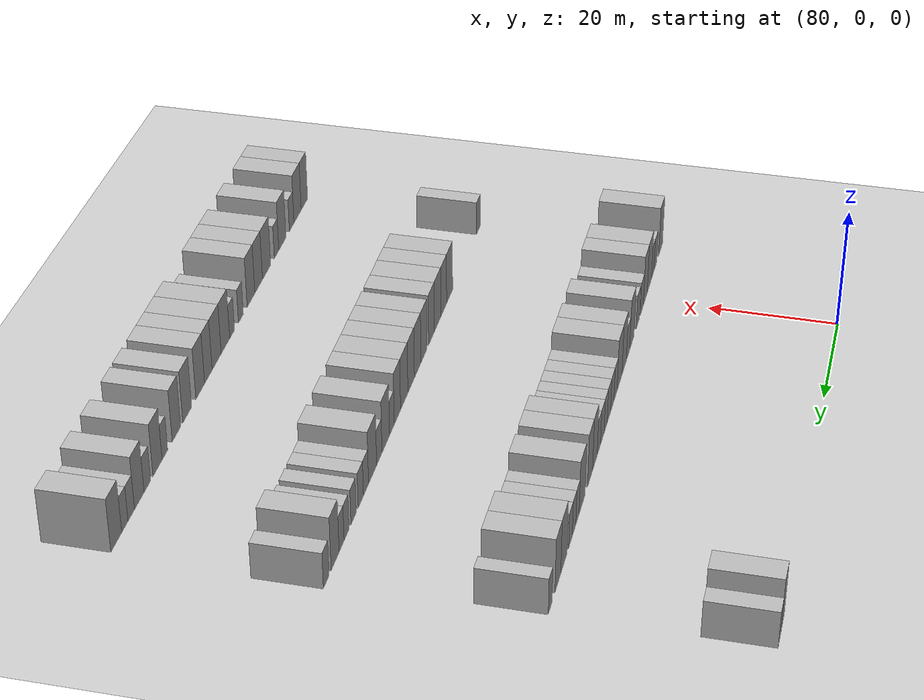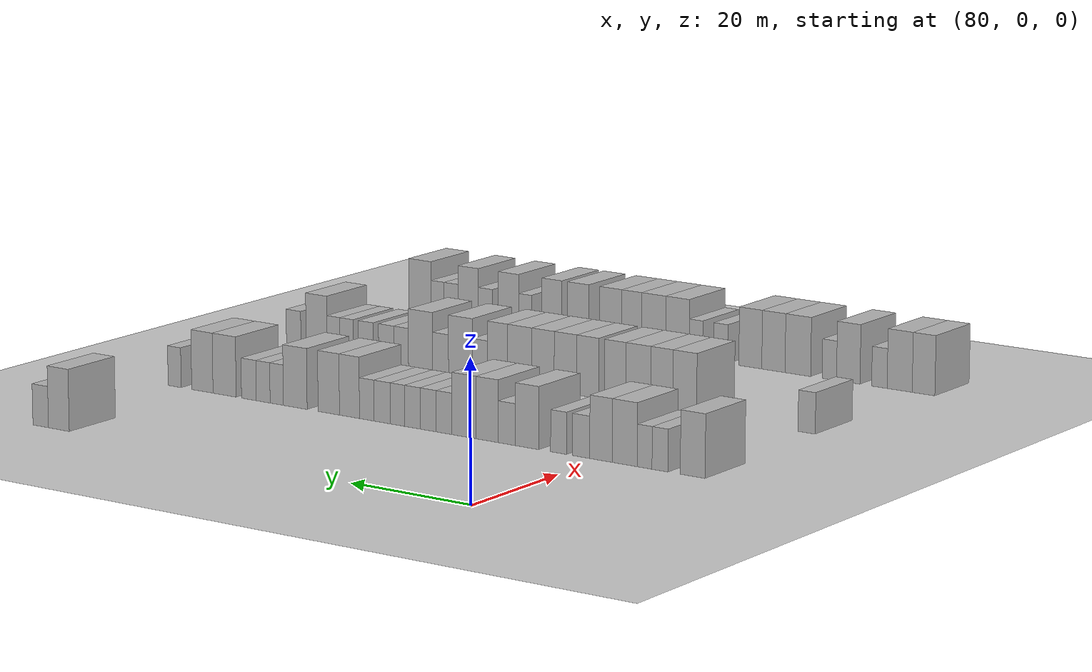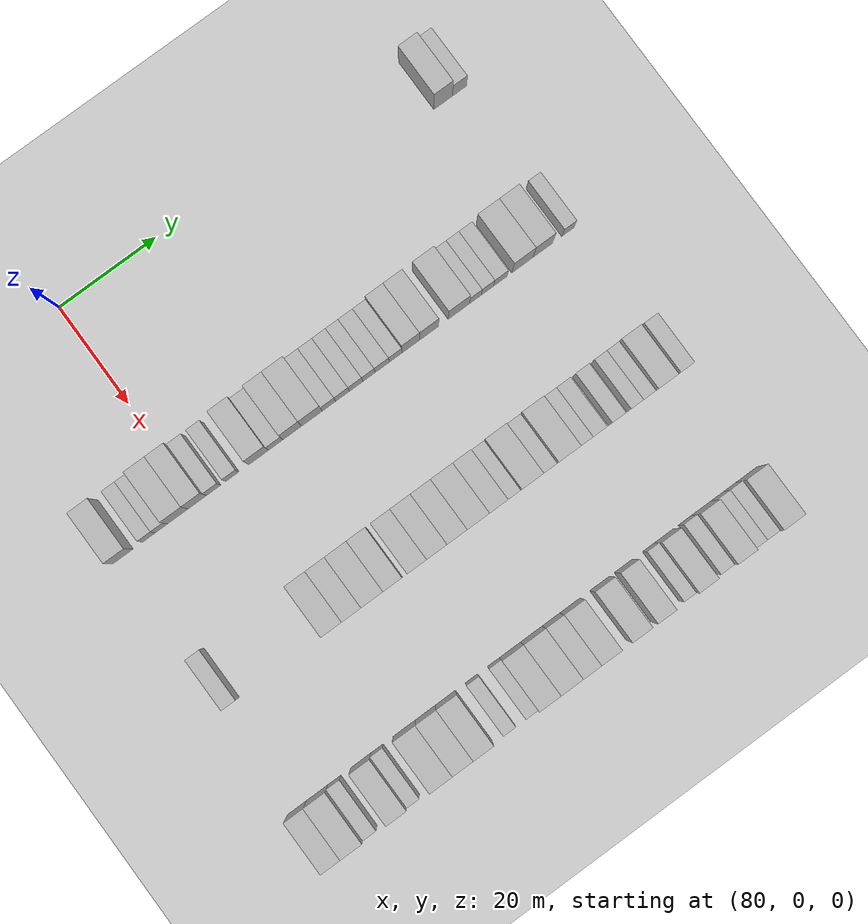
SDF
<sdf version="1.6">
 <world name="default">
  <include>
   <name>ground_plane_2</name>
   <uri>model://HANNAS_ground_plane</uri>
   <pose>100 0 0  0 0 0</pose>
  </include>
  <model name="building_602">
   <static>1</static>
   <pose>85.0000 72.1271 0 0.000000 0.000000 0.000000</pose>
   <link name="link">
    <pose>0 0 4.50 0 0 0</pose>
    <collision name="collision"><geometry><box><size>10.0000 3.8867 9.0000</size></box></geometry></collision>
    <visual name="visual">
     <cast_shadows>0</cast_shadows>
     <geometry><box><size>10.0000 3.8867 9.0000</size></box></geometry>
     <material>
      <script>
       <uri>model://HANNAS_wall/materials/scripts</uri>
       <uri>model://HANNAS_wall/materials/textures</uri>
       <name>vrc/HANNAS_wall</name>
      </script>
     </material>
    </visual>
   </link>
  </model>
  <model name="building_603">
   <static>1</static>
   <pose>85.0000 75.5362 0 0.000000 0.000000 0.000000</pose>
   <link name="link">
    <pose>0 0 3.00 0 0 0</pose>
    <collision name="collision"><geometry><box><size>10.0000 2.9314 6.0000</size></box></geometry></collision>
    <visual name="visual">
     <cast_shadows>0</cast_shadows>
     <geometry><box><size>10.0000 2.9314 6.0000</size></box></geometry>
     <material>
      <script>
       <uri>model://HANNAS_wall/materials/scripts</uri>
       <uri>model://HANNAS_wall/materials/textures</uri>
       <name>vrc/HANNAS_wall</name>
      </script>
     </material>
    </visual>
   </link>
  </model>
  <model name="building_815">
   <static>1</static>
   <pose>115.0000 -15.3195 0 0.000000 0.000000 0.000000</pose>
   <link name="link">
    <pose>0 0 4.50 0 0 0</pose>
    <collision name="collision"><geometry><box><size>10.0000 4.0246 9.0000</size></box></geometry></collision>
    <visual name="visual">
     <cast_shadows>0</cast_shadows>
     <geometry><box><size>10.0000 4.0246 9.0000</size></box></geometry>
     <material>
      <script>
       <uri>model://HANNAS_wall/materials/scripts</uri>
       <uri>model://HANNAS_wall/materials/textures</uri>
       <name>vrc/HANNAS_wall</name>
      </script>
     </material>
    </visual>
   </link>
  </model>
  <model name="building_816">
   <static>1</static>
   <pose>115.0000 -9.9924 0 0.000000 0.000000 0.000000</pose>
   <link name="link">
    <pose>0 0 3.00 0 0 0</pose>
    <collision name="collision"><geometry><box><size>10.0000 2.6296 6.0000</size></box></geometry></collision>
    <visual name="visual">
     <cast_shadows>0</cast_shadows>
     <geometry><box><size>10.0000 2.6296 6.0000</size></box></geometry>
     <material>
      <script>
       <uri>model://HANNAS_wall/materials/scripts</uri>
       <uri>model://HANNAS_wall/materials/textures</uri>
       <name>vrc/HANNAS_wall</name>
      </script>
     </material>
    </visual>
   </link>
  </model>
  <model name="building_817">
   <static>1</static>
   <pose>115.0000 -7.4677 0 0.000000 0.000000 0.000000</pose>
   <link name="link">
    <pose>0 0 3.00 0 0 0</pose>
    <collision name="collision"><geometry><box><size>10.0000 2.4199 6.0000</size></box></geometry></collision>
    <visual name="visual">
     <cast_shadows>0</cast_shadows>
     <geometry><box><size>10.0000 2.4199 6.0000</size></box></geometry>
     <material>
      <script>
       <uri>model://HANNAS_wall/materials/scripts</uri>
       <uri>model://HANNAS_wall/materials/textures</uri>
       <name>vrc/HANNAS_wall</name>
      </script>
     </material>
    </visual>
   </link>
  </model>
  <model name="building_818">
   <static>1</static>
   <pose>115.0000 -4.1831 0 0.000000 0.000000 0.000000</pose>
   <link name="link">
    <pose>0 0 4.50 0 0 0</pose>
    <collision name="collision"><geometry><box><size>10.0000 4.1493 9.0000</size></box></geometry></collision>
    <visual name="visual">
     <cast_shadows>0</cast_shadows>
     <geometry><box><size>10.0000 4.1493 9.0000</size></box></geometry>
     <material>
      <script>
       <uri>model://HANNAS_wall/materials/scripts</uri>
       <uri>model://HANNAS_wall/materials/textures</uri>
       <name>vrc/HANNAS_wall</name>
      </script>
     </material>
    </visual>
   </link>
  </model>
  <model name="building_819">
   <static>1</static>
   <pose>115.0000 -0.2357 0 0.000000 0.000000 0.000000</pose>
   <link name="link">
    <pose>0 0 4.50 0 0 0</pose>
    <collision name="collision"><geometry><box><size>10.0000 3.7454 9.0000</size></box></geometry></collision>
    <visual name="visual">
     <cast_shadows>0</cast_shadows>
     <geometry><box><size>10.0000 3.7454 9.0000</size></box></geometry>
     <material>
      <script>
       <uri>model://HANNAS_wall/materials/scripts</uri>
       <uri>model://HANNAS_wall/materials/textures</uri>
       <name>vrc/HANNAS_wall</name>
      </script>
     </material>
    </visual>
   </link>
  </model>
  <model name="building_820">
   <static>1</static>
   <pose>115.0000 3.0739 0 0.000000 0.000000 0.000000</pose>
   <link name="link">
    <pose>0 0 3.00 0 0 0</pose>
    <collision name="collision"><geometry><box><size>10.0000 2.8736 6.0000</size></box></geometry></collision>
    <visual name="visual">
     <cast_shadows>0</cast_shadows>
     <geometry><box><size>10.0000 2.8736 6.0000</size></box></geometry>
     <material>
      <script>
       <uri>model://HANNAS_wall/materials/scripts</uri>
       <uri>model://HANNAS_wall/materials/textures</uri>
       <name>vrc/HANNAS_wall</name>
      </script>
     </material>
    </visual>
   </link>
  </model>
  <model name="building_821">
   <static>1</static>
   <pose>115.0000 6.8669 0 0.000000 0.000000 0.000000</pose>
   <link name="link">
    <pose>0 0 3.00 0 0 0</pose>
    <collision name="collision"><geometry><box><size>10.0000 2.7125 6.0000</size></box></geometry></collision>
    <visual name="visual">
     <cast_shadows>0</cast_shadows>
     <geometry><box><size>10.0000 2.7125 6.0000</size></box></geometry>
     <material>
      <script>
       <uri>model://HANNAS_wall/materials/scripts</uri>
       <uri>model://HANNAS_wall/materials/textures</uri>
       <name>vrc/HANNAS_wall</name>
      </script>
     </material>
    </visual>
   </link>
  </model>
  <model name="building_822">
   <static>1</static>
   <pose>115.0000 12.2320 0 0.000000 0.000000 0.000000</pose>
   <link name="link">
    <pose>0 0 4.50 0 0 0</pose>
    <collision name="collision"><geometry><box><size>10.0000 4.0177 9.0000</size></box></geometry></collision>
    <visual name="visual">
     <cast_shadows>0</cast_shadows>
     <geometry><box><size>10.0000 4.0177 9.0000</size></box></geometry>
     <material>
      <script>
       <uri>model://HANNAS_wall/materials/scripts</uri>
       <uri>model://HANNAS_wall/materials/textures</uri>
       <name>vrc/HANNAS_wall</name>
      </script>
     </material>
    </visual>
   </link>
  </model>
  <model name="building_823">
   <static>1</static>
   <pose>115.0000 15.7139 0 0.000000 0.000000 0.000000</pose>
   <link name="link">
    <pose>0 0 3.00 0 0 0</pose>
    <collision name="collision"><geometry><box><size>10.0000 2.9461 6.0000</size></box></geometry></collision>
    <visual name="visual">
     <cast_shadows>0</cast_shadows>
     <geometry><box><size>10.0000 2.9461 6.0000</size></box></geometry>
     <material>
      <script>
       <uri>model://HANNAS_wall/materials/scripts</uri>
       <uri>model://HANNAS_wall/materials/textures</uri>
       <name>vrc/HANNAS_wall</name>
      </script>
     </material>
    </visual>
   </link>
  </model>
  <model name="building_824">
   <static>1</static>
   <pose>115.0000 19.0876 0 0.000000 0.000000 0.000000</pose>
   <link name="link">
    <pose>0 0 4.50 0 0 0</pose>
    <collision name="collision"><geometry><box><size>10.0000 3.8013 9.0000</size></box></geometry></collision>
    <visual name="visual">
     <cast_shadows>0</cast_shadows>
     <geometry><box><size>10.0000 3.8013 9.0000</size></box></geometry>
     <material>
      <script>
       <uri>model://HANNAS_wall/materials/scripts</uri>
       <uri>model://HANNAS_wall/materials/textures</uri>
       <name>vrc/HANNAS_wall</name>
      </script>
     </material>
    </visual>
   </link>
  </model>
  <model name="building_825">
   <static>1</static>
   <pose>115.0000 23.1120 0 0.000000 0.000000 0.000000</pose>
   <link name="link">
    <pose>0 0 4.50 0 0 0</pose>
    <collision name="collision"><geometry><box><size>10.0000 4.2475 9.0000</size></box></geometry></collision>
    <visual name="visual">
     <cast_shadows>0</cast_shadows>
     <geometry><box><size>10.0000 4.2475 9.0000</size></box></geometry>
     <material>
      <script>
       <uri>model://HANNAS_wall/materials/scripts</uri>
       <uri>model://HANNAS_wall/materials/textures</uri>
       <name>vrc/HANNAS_wall</name>
      </script>
     </material>
    </visual>
   </link>
  </model>
  <model name="building_826">
   <static>1</static>
   <pose>115.0000 26.5913 0 0.000000 0.000000 0.000000</pose>
   <link name="link">
    <pose>0 0 3.00 0 0 0</pose>
    <collision name="collision"><geometry><box><size>10.0000 2.7109 6.0000</size></box></geometry></collision>
    <visual name="visual">
     <cast_shadows>0</cast_shadows>
     <geometry><box><size>10.0000 2.7109 6.0000</size></box></geometry>
     <material>
      <script>
       <uri>model://HANNAS_wall/materials/scripts</uri>
       <uri>model://HANNAS_wall/materials/textures</uri>
       <name>vrc/HANNAS_wall</name>
      </script>
     </material>
    </visual>
   </link>
  </model>
  <model name="building_827">
   <static>1</static>
   <pose>115.0000 29.3653 0 0.000000 0.000000 0.000000</pose>
   <link name="link">
    <pose>0 0 3.00 0 0 0</pose>
    <collision name="collision"><geometry><box><size>10.0000 2.8371 6.0000</size></box></geometry></collision>
    <visual name="visual">
     <cast_shadows>0</cast_shadows>
     <geometry><box><size>10.0000 2.8371 6.0000</size></box></geometry>
     <material>
      <script>
       <uri>model://HANNAS_wall/materials/scripts</uri>
       <uri>model://HANNAS_wall/materials/textures</uri>
       <name>vrc/HANNAS_wall</name>
      </script>
     </material>
    </visual>
   </link>
  </model>
  <model name="building_828">
   <static>1</static>
   <pose>115.0000 32.1494 0 0.000000 0.000000 0.000000</pose>
   <link name="link">
    <pose>0 0 3.00 0 0 0</pose>
    <collision name="collision"><geometry><box><size>10.0000 2.7312 6.0000</size></box></geometry></collision>
    <visual name="visual">
     <cast_shadows>0</cast_shadows>
     <geometry><box><size>10.0000 2.7312 6.0000</size></box></geometry>
     <material>
      <script>
       <uri>model://HANNAS_wall/materials/scripts</uri>
       <uri>model://HANNAS_wall/materials/textures</uri>
       <name>vrc/HANNAS_wall</name>
      </script>
     </material>
    </visual>
   </link>
  </model>
  <model name="building_829">
   <static>1</static>
   <pose>115.0000 34.7835 0 0.000000 0.000000 0.000000</pose>
   <link name="link">
    <pose>0 0 3.00 0 0 0</pose>
    <collision name="collision"><geometry><box><size>10.0000 2.5369 6.0000</size></box></geometry></collision>
    <visual name="visual">
     <cast_shadows>0</cast_shadows>
     <geometry><box><size>10.0000 2.5369 6.0000</size></box></geometry>
     <material>
      <script>
       <uri>model://HANNAS_wall/materials/scripts</uri>
       <uri>model://HANNAS_wall/materials/textures</uri>
       <name>vrc/HANNAS_wall</name>
      </script>
     </material>
    </visual>
   </link>
  </model>
  <model name="building_830">
   <static>1</static>
   <pose>115.0000 37.5095 0 0.000000 0.000000 0.000000</pose>
   <link name="link">
    <pose>0 0 3.00 0 0 0</pose>
    <collision name="collision"><geometry><box><size>10.0000 2.9151 6.0000</size></box></geometry></collision>
    <visual name="visual">
     <cast_shadows>0</cast_shadows>
     <geometry><box><size>10.0000 2.9151 6.0000</size></box></geometry>
     <material>
      <script>
       <uri>model://HANNAS_wall/materials/scripts</uri>
       <uri>model://HANNAS_wall/materials/textures</uri>
       <name>vrc/HANNAS_wall</name>
      </script>
     </material>
    </visual>
   </link>
  </model>
  <model name="building_831">
   <static>1</static>
   <pose>115.0000 40.2841 0 0.000000 0.000000 0.000000</pose>
   <link name="link">
    <pose>0 0 3.00 0 0 0</pose>
    <collision name="collision"><geometry><box><size>10.0000 2.6342 6.0000</size></box></geometry></collision>
    <visual name="visual">
     <cast_shadows>0</cast_shadows>
     <geometry><box><size>10.0000 2.6342 6.0000</size></box></geometry>
     <material>
      <script>
       <uri>model://HANNAS_wall/materials/scripts</uri>
       <uri>model://HANNAS_wall/materials/textures</uri>
       <name>vrc/HANNAS_wall</name>
      </script>
     </material>
    </visual>
   </link>
  </model>
  <model name="building_832">
   <static>1</static>
   <pose>115.0000 43.4071 0 0.000000 0.000000 0.000000</pose>
   <link name="link">
    <pose>0 0 4.50 0 0 0</pose>
    <collision name="collision"><geometry><box><size>10.0000 3.6117 9.0000</size></box></geometry></collision>
    <visual name="visual">
     <cast_shadows>0</cast_shadows>
     <geometry><box><size>10.0000 3.6117 9.0000</size></box></geometry>
     <material>
      <script>
       <uri>model://HANNAS_wall/materials/scripts</uri>
       <uri>model://HANNAS_wall/materials/textures</uri>
       <name>vrc/HANNAS_wall</name>
      </script>
     </material>
    </visual>
   </link>
  </model>
  <model name="building_833">
   <static>1</static>
   <pose>115.0000 47.1525 0 0.000000 0.000000 0.000000</pose>
   <link name="link">
    <pose>0 0 4.50 0 0 0</pose>
    <collision name="collision"><geometry><box><size>10.0000 3.8791 9.0000</size></box></geometry></collision>
    <visual name="visual">
     <cast_shadows>0</cast_shadows>
     <geometry><box><size>10.0000 3.8791 9.0000</size></box></geometry>
     <material>
      <script>
       <uri>model://HANNAS_wall/materials/scripts</uri>
       <uri>model://HANNAS_wall/materials/textures</uri>
       <name>vrc/HANNAS_wall</name>
      </script>
     </material>
    </visual>
   </link>
  </model>
  <model name="building_834">
   <static>1</static>
   <pose>115.0000 53.2770 0 0.000000 0.000000 0.000000</pose>
   <link name="link">
    <pose>0 0 4.50 0 0 0</pose>
    <collision name="collision"><geometry><box><size>10.0000 4.3698 9.0000</size></box></geometry></collision>
    <visual name="visual">
     <cast_shadows>0</cast_shadows>
     <geometry><box><size>10.0000 4.3698 9.0000</size></box></geometry>
     <material>
      <script>
       <uri>model://HANNAS_wall/materials/scripts</uri>
       <uri>model://HANNAS_wall/materials/textures</uri>
       <name>vrc/HANNAS_wall</name>
      </script>
     </material>
    </visual>
   </link>
  </model>
  <model name="building_835">
   <static>1</static>
   <pose>115.0000 56.6901 0 0.000000 0.000000 0.000000</pose>
   <link name="link">
    <pose>0 0 3.00 0 0 0</pose>
    <collision name="collision"><geometry><box><size>10.0000 2.4565 6.0000</size></box></geometry></collision>
    <visual name="visual">
     <cast_shadows>0</cast_shadows>
     <geometry><box><size>10.0000 2.4565 6.0000</size></box></geometry>
     <material>
      <script>
       <uri>model://HANNAS_wall/materials/scripts</uri>
       <uri>model://HANNAS_wall/materials/textures</uri>
       <name>vrc/HANNAS_wall</name>
      </script>
     </material>
    </visual>
   </link>
  </model>
  <model name="building_836">
   <static>1</static>
   <pose>115.0000 59.2023 0 0.000000 0.000000 0.000000</pose>
   <link name="link">
    <pose>0 0 3.00 0 0 0</pose>
    <collision name="collision"><geometry><box><size>10.0000 2.5679 6.0000</size></box></geometry></collision>
    <visual name="visual">
     <cast_shadows>0</cast_shadows>
     <geometry><box><size>10.0000 2.5679 6.0000</size></box></geometry>
     <material>
      <script>
       <uri>model://HANNAS_wall/materials/scripts</uri>
       <uri>model://HANNAS_wall/materials/textures</uri>
       <name>vrc/HANNAS_wall</name>
      </script>
     </material>
    </visual>
   </link>
  </model>
  <model name="building_837">
   <static>1</static>
   <pose>115.0000 61.8632 0 0.000000 0.000000 0.000000</pose>
   <link name="link">
    <pose>0 0 3.00 0 0 0</pose>
    <collision name="collision"><geometry><box><size>10.0000 2.7539 6.0000</size></box></geometry></collision>
    <visual name="visual">
     <cast_shadows>0</cast_shadows>
     <geometry><box><size>10.0000 2.7539 6.0000</size></box></geometry>
     <material>
      <script>
       <uri>model://HANNAS_wall/materials/scripts</uri>
       <uri>model://HANNAS_wall/materials/textures</uri>
       <name>vrc/HANNAS_wall</name>
      </script>
     </material>
    </visual>
   </link>
  </model>
  <model name="building_838">
   <static>1</static>
   <pose>115.0000 66.4186 0 0.000000 0.000000 0.000000</pose>
   <link name="link">
    <pose>0 0 4.50 0 0 0</pose>
    <collision name="collision"><geometry><box><size>10.0000 4.3569 9.0000</size></box></geometry></collision>
    <visual name="visual">
     <cast_shadows>0</cast_shadows>
     <geometry><box><size>10.0000 4.3569 9.0000</size></box></geometry>
     <material>
      <script>
       <uri>model://HANNAS_wall/materials/scripts</uri>
       <uri>model://HANNAS_wall/materials/textures</uri>
       <name>vrc/HANNAS_wall</name>
      </script>
     </material>
    </visual>
   </link>
  </model>
  <model name="building_839">
   <static>1</static>
   <pose>115.0000 70.6143 0 0.000000 0.000000 0.000000</pose>
   <link name="link">
    <pose>0 0 4.50 0 0 0</pose>
    <collision name="collision"><geometry><box><size>10.0000 4.0347 9.0000</size></box></geometry></collision>
    <visual name="visual">
     <cast_shadows>0</cast_shadows>
     <geometry><box><size>10.0000 4.0347 9.0000</size></box></geometry>
     <material>
      <script>
       <uri>model://HANNAS_wall/materials/scripts</uri>
       <uri>model://HANNAS_wall/materials/textures</uri>
       <name>vrc/HANNAS_wall</name>
      </script>
     </material>
    </visual>
   </link>
  </model>
  <model name="building_840">
   <static>1</static>
   <pose>115.0000 75.8795 0 0.000000 0.000000 0.000000</pose>
   <link name="link">
    <pose>0 0 3.00 0 0 0</pose>
    <collision name="collision"><geometry><box><size>10.0000 2.4956 6.0000</size></box></geometry></collision>
    <visual name="visual">
     <cast_shadows>0</cast_shadows>
     <geometry><box><size>10.0000 2.4956 6.0000</size></box></geometry>
     <material>
      <script>
       <uri>model://HANNAS_wall/materials/scripts</uri>
       <uri>model://HANNAS_wall/materials/textures</uri>
       <name>vrc/HANNAS_wall</name>
      </script>
     </material>
    </visual>
   </link>
  </model>
  <model name="building_1040">
   <static>1</static>
   <pose>145.0000 -14.8241 0 0.000000 0.000000 0.000000</pose>
   <link name="link">
    <pose>0 0 3.00 0 0 0</pose>
    <collision name="collision"><geometry><box><size>10.0000 2.8543 6.0000</size></box></geometry></collision>
    <visual name="visual">
     <cast_shadows>0</cast_shadows>
     <geometry><box><size>10.0000 2.8543 6.0000</size></box></geometry>
     <material>
      <script>
       <uri>model://HANNAS_wall/materials/scripts</uri>
       <uri>model://HANNAS_wall/materials/textures</uri>
       <name>vrc/HANNAS_wall</name>
      </script>
     </material>
    </visual>
   </link>
  </model>
  <model name="building_1041">
   <static>1</static>
   <pose>145.0000 5.7694 0 0.000000 0.000000 0.000000</pose>
   <link name="link">
    <pose>0 0 4.50 0 0 0</pose>
    <collision name="collision"><geometry><box><size>10.0000 4.1109 9.0000</size></box></geometry></collision>
    <visual name="visual">
     <cast_shadows>0</cast_shadows>
     <geometry><box><size>10.0000 4.1109 9.0000</size></box></geometry>
     <material>
      <script>
       <uri>model://HANNAS_wall/materials/scripts</uri>
       <uri>model://HANNAS_wall/materials/textures</uri>
       <name>vrc/HANNAS_wall</name>
      </script>
     </material>
    </visual>
   </link>
  </model>
  <model name="building_1042">
   <static>1</static>
   <pose>145.0000 9.7400 0 0.000000 0.000000 0.000000</pose>
   <link name="link">
    <pose>0 0 4.50 0 0 0</pose>
    <collision name="collision"><geometry><box><size>10.0000 3.8304 9.0000</size></box></geometry></collision>
    <visual name="visual">
     <cast_shadows>0</cast_shadows>
     <geometry><box><size>10.0000 3.8304 9.0000</size></box></geometry>
     <material>
      <script>
       <uri>model://HANNAS_wall/materials/scripts</uri>
       <uri>model://HANNAS_wall/materials/textures</uri>
       <name>vrc/HANNAS_wall</name>
      </script>
     </material>
    </visual>
   </link>
  </model>
  <model name="building_1043">
   <static>1</static>
   <pose>145.0000 13.8228 0 0.000000 0.000000 0.000000</pose>
   <link name="link">
    <pose>0 0 4.50 0 0 0</pose>
    <collision name="collision"><geometry><box><size>10.0000 4.3353 9.0000</size></box></geometry></collision>
    <visual name="visual">
     <cast_shadows>0</cast_shadows>
     <geometry><box><size>10.0000 4.3353 9.0000</size></box></geometry>
     <material>
      <script>
       <uri>model://HANNAS_wall/materials/scripts</uri>
       <uri>model://HANNAS_wall/materials/textures</uri>
       <name>vrc/HANNAS_wall</name>
      </script>
     </material>
    </visual>
   </link>
  </model>
  <model name="building_1044">
   <static>1</static>
   <pose>145.0000 17.8666 0 0.000000 0.000000 0.000000</pose>
   <link name="link">
    <pose>0 0 4.50 0 0 0</pose>
    <collision name="collision"><geometry><box><size>10.0000 3.7522 9.0000</size></box></geometry></collision>
    <visual name="visual">
     <cast_shadows>0</cast_shadows>
     <geometry><box><size>10.0000 3.7522 9.0000</size></box></geometry>
     <material>
      <script>
       <uri>model://HANNAS_wall/materials/scripts</uri>
       <uri>model://HANNAS_wall/materials/textures</uri>
       <name>vrc/HANNAS_wall</name>
      </script>
     </material>
    </visual>
   </link>
  </model>
  <model name="building_1045">
   <static>1</static>
   <pose>145.0000 22.6790 0 0.000000 0.000000 0.000000</pose>
   <link name="link">
    <pose>0 0 4.50 0 0 0</pose>
    <collision name="collision"><geometry><box><size>10.0000 3.8727 9.0000</size></box></geometry></collision>
    <visual name="visual">
     <cast_shadows>0</cast_shadows>
     <geometry><box><size>10.0000 3.8727 9.0000</size></box></geometry>
     <material>
      <script>
       <uri>model://HANNAS_wall/materials/scripts</uri>
       <uri>model://HANNAS_wall/materials/textures</uri>
       <name>vrc/HANNAS_wall</name>
      </script>
     </material>
    </visual>
   </link>
  </model>
  <model name="building_1046">
   <static>1</static>
   <pose>145.0000 26.6401 0 0.000000 0.000000 0.000000</pose>
   <link name="link">
    <pose>0 0 4.50 0 0 0</pose>
    <collision name="collision"><geometry><box><size>10.0000 4.0496 9.0000</size></box></geometry></collision>
    <visual name="visual">
     <cast_shadows>0</cast_shadows>
     <geometry><box><size>10.0000 4.0496 9.0000</size></box></geometry>
     <material>
      <script>
       <uri>model://HANNAS_wall/materials/scripts</uri>
       <uri>model://HANNAS_wall/materials/textures</uri>
       <name>vrc/HANNAS_wall</name>
      </script>
     </material>
    </visual>
   </link>
  </model>
  <model name="building_1047">
   <static>1</static>
   <pose>145.0000 30.6682 0 0.000000 0.000000 0.000000</pose>
   <link name="link">
    <pose>0 0 4.50 0 0 0</pose>
    <collision name="collision"><geometry><box><size>10.0000 4.0067 9.0000</size></box></geometry></collision>
    <visual name="visual">
     <cast_shadows>0</cast_shadows>
     <geometry><box><size>10.0000 4.0067 9.0000</size></box></geometry>
     <material>
      <script>
       <uri>model://HANNAS_wall/materials/scripts</uri>
       <uri>model://HANNAS_wall/materials/textures</uri>
       <name>vrc/HANNAS_wall</name>
      </script>
     </material>
    </visual>
   </link>
  </model>
  <model name="building_1048">
   <static>1</static>
   <pose>145.0000 34.8838 0 0.000000 0.000000 0.000000</pose>
   <link name="link">
    <pose>0 0 4.50 0 0 0</pose>
    <collision name="collision"><geometry><box><size>10.0000 4.4245 9.0000</size></box></geometry></collision>
    <visual name="visual">
     <cast_shadows>0</cast_shadows>
     <geometry><box><size>10.0000 4.4245 9.0000</size></box></geometry>
     <material>
      <script>
       <uri>model://HANNAS_wall/materials/scripts</uri>
       <uri>model://HANNAS_wall/materials/textures</uri>
       <name>vrc/HANNAS_wall</name>
      </script>
     </material>
    </visual>
   </link>
  </model>
  <model name="building_1049">
   <static>1</static>
   <pose>145.0000 38.9397 0 0.000000 0.000000 0.000000</pose>
   <link name="link">
    <pose>0 0 4.50 0 0 0</pose>
    <collision name="collision"><geometry><box><size>10.0000 3.6873 9.0000</size></box></geometry></collision>
    <visual name="visual">
     <cast_shadows>0</cast_shadows>
     <geometry><box><size>10.0000 3.6873 9.0000</size></box></geometry>
     <material>
      <script>
       <uri>model://HANNAS_wall/materials/scripts</uri>
       <uri>model://HANNAS_wall/materials/textures</uri>
       <name>vrc/HANNAS_wall</name>
      </script>
     </material>
    </visual>
   </link>
  </model>
  <model name="building_1050">
   <static>1</static>
   <pose>145.0000 42.1488 0 0.000000 0.000000 0.000000</pose>
   <link name="link">
    <pose>0 0 3.00 0 0 0</pose>
    <collision name="collision"><geometry><box><size>10.0000 2.7309 6.0000</size></box></geometry></collision>
    <visual name="visual">
     <cast_shadows>0</cast_shadows>
     <geometry><box><size>10.0000 2.7309 6.0000</size></box></geometry>
     <material>
      <script>
       <uri>model://HANNAS_wall/materials/scripts</uri>
       <uri>model://HANNAS_wall/materials/textures</uri>
       <name>vrc/HANNAS_wall</name>
      </script>
     </material>
    </visual>
   </link>
  </model>
  <model name="building_1051">
   <static>1</static>
   <pose>145.0000 45.7005 0 0.000000 0.000000 0.000000</pose>
   <link name="link">
    <pose>0 0 4.50 0 0 0</pose>
    <collision name="collision"><geometry><box><size>10.0000 4.3724 9.0000</size></box></geometry></collision>
    <visual name="visual">
     <cast_shadows>0</cast_shadows>
     <geometry><box><size>10.0000 4.3724 9.0000</size></box></geometry>
     <material>
      <script>
       <uri>model://HANNAS_wall/materials/scripts</uri>
       <uri>model://HANNAS_wall/materials/textures</uri>
       <name>vrc/HANNAS_wall</name>
      </script>
     </material>
    </visual>
   </link>
  </model>
  <model name="building_1052">
   <static>1</static>
   <pose>145.0000 49.3763 0 0.000000 0.000000 0.000000</pose>
   <link name="link">
    <pose>0 0 3.00 0 0 0</pose>
    <collision name="collision"><geometry><box><size>10.0000 2.9791 6.0000</size></box></geometry></collision>
    <visual name="visual">
     <cast_shadows>0</cast_shadows>
     <geometry><box><size>10.0000 2.9791 6.0000</size></box></geometry>
     <material>
      <script>
       <uri>model://HANNAS_wall/materials/scripts</uri>
       <uri>model://HANNAS_wall/materials/textures</uri>
       <name>vrc/HANNAS_wall</name>
      </script>
     </material>
    </visual>
   </link>
  </model>
  <model name="building_1053">
   <static>1</static>
   <pose>145.0000 53.1043 0 0.000000 0.000000 0.000000</pose>
   <link name="link">
    <pose>0 0 4.50 0 0 0</pose>
    <collision name="collision"><geometry><box><size>10.0000 4.4769 9.0000</size></box></geometry></collision>
    <visual name="visual">
     <cast_shadows>0</cast_shadows>
     <geometry><box><size>10.0000 4.4769 9.0000</size></box></geometry>
     <material>
      <script>
       <uri>model://HANNAS_wall/materials/scripts</uri>
       <uri>model://HANNAS_wall/materials/textures</uri>
       <name>vrc/HANNAS_wall</name>
      </script>
     </material>
    </visual>
   </link>
  </model>
  <model name="building_1054">
   <static>1</static>
   <pose>145.0000 56.7218 0 0.000000 0.000000 0.000000</pose>
   <link name="link">
    <pose>0 0 3.00 0 0 0</pose>
    <collision name="collision"><geometry><box><size>10.0000 2.7581 6.0000</size></box></geometry></collision>
    <visual name="visual">
     <cast_shadows>0</cast_shadows>
     <geometry><box><size>10.0000 2.7581 6.0000</size></box></geometry>
     <material>
      <script>
       <uri>model://HANNAS_wall/materials/scripts</uri>
       <uri>model://HANNAS_wall/materials/textures</uri>
       <name>vrc/HANNAS_wall</name>
      </script>
     </material>
    </visual>
   </link>
  </model>
  <model name="building_1055">
   <static>1</static>
   <pose>145.0000 59.5335 0 0.000000 0.000000 0.000000</pose>
   <link name="link">
    <pose>0 0 3.00 0 0 0</pose>
    <collision name="collision"><geometry><box><size>10.0000 2.8652 6.0000</size></box></geometry></collision>
    <visual name="visual">
     <cast_shadows>0</cast_shadows>
     <geometry><box><size>10.0000 2.8652 6.0000</size></box></geometry>
     <material>
      <script>
       <uri>model://HANNAS_wall/materials/scripts</uri>
       <uri>model://HANNAS_wall/materials/textures</uri>
       <name>vrc/HANNAS_wall</name>
      </script>
     </material>
    </visual>
   </link>
  </model>
  <model name="building_1056">
   <static>1</static>
   <pose>145.0000 63.3692 0 0.000000 0.000000 0.000000</pose>
   <link name="link">
    <pose>0 0 3.00 0 0 0</pose>
    <collision name="collision"><geometry><box><size>10.0000 2.8061 6.0000</size></box></geometry></collision>
    <visual name="visual">
     <cast_shadows>0</cast_shadows>
     <geometry><box><size>10.0000 2.8061 6.0000</size></box></geometry>
     <material>
      <script>
       <uri>model://HANNAS_wall/materials/scripts</uri>
       <uri>model://HANNAS_wall/materials/textures</uri>
       <name>vrc/HANNAS_wall</name>
      </script>
     </material>
    </visual>
   </link>
  </model>
  <model name="building_1057">
   <static>1</static>
   <pose>145.0000 67.0434 0 0.000000 0.000000 0.000000</pose>
   <link name="link">
    <pose>0 0 3.00 0 0 0</pose>
    <collision name="collision"><geometry><box><size>10.0000 2.5423 6.0000</size></box></geometry></collision>
    <visual name="visual">
     <cast_shadows>0</cast_shadows>
     <geometry><box><size>10.0000 2.5423 6.0000</size></box></geometry>
     <material>
      <script>
       <uri>model://HANNAS_wall/materials/scripts</uri>
       <uri>model://HANNAS_wall/materials/textures</uri>
       <name>vrc/HANNAS_wall</name>
      </script>
     </material>
    </visual>
   </link>
  </model>
  <model name="building_1058">
   <static>1</static>
   <pose>145.0000 69.5686 0 0.000000 0.000000 0.000000</pose>
   <link name="link">
    <pose>0 0 3.00 0 0 0</pose>
    <collision name="collision"><geometry><box><size>10.0000 2.5082 6.0000</size></box></geometry></collision>
    <visual name="visual">
     <cast_shadows>0</cast_shadows>
     <geometry><box><size>10.0000 2.5082 6.0000</size></box></geometry>
     <material>
      <script>
       <uri>model://HANNAS_wall/materials/scripts</uri>
       <uri>model://HANNAS_wall/materials/textures</uri>
       <name>vrc/HANNAS_wall</name>
      </script>
     </material>
    </visual>
   </link>
  </model>
  <model name="building_1059">
   <static>1</static>
   <pose>145.0000 72.8426 0 0.000000 0.000000 0.000000</pose>
   <link name="link">
    <pose>0 0 4.50 0 0 0</pose>
    <collision name="collision"><geometry><box><size>10.0000 4.0398 9.0000</size></box></geometry></collision>
    <visual name="visual">
     <cast_shadows>0</cast_shadows>
     <geometry><box><size>10.0000 4.0398 9.0000</size></box></geometry>
     <material>
      <script>
       <uri>model://HANNAS_wall/materials/scripts</uri>
       <uri>model://HANNAS_wall/materials/textures</uri>
       <name>vrc/HANNAS_wall</name>
      </script>
     </material>
    </visual>
   </link>
  </model>
  <model name="building_1060">
   <static>1</static>
   <pose>145.0000 77.2683 0 0.000000 0.000000 0.000000</pose>
   <link name="link">
    <pose>0 0 3.00 0 0 0</pose>
    <collision name="collision"><geometry><box><size>10.0000 2.8116 6.0000</size></box></geometry></collision>
    <visual name="visual">
     <cast_shadows>0</cast_shadows>
     <geometry><box><size>10.0000 2.8116 6.0000</size></box></geometry>
     <material>
      <script>
       <uri>model://HANNAS_wall/materials/scripts</uri>
       <uri>model://HANNAS_wall/materials/textures</uri>
       <name>vrc/HANNAS_wall</name>
      </script>
     </material>
    </visual>
   </link>
  </model>
  <model name="building_1253">
   <static>1</static>
   <pose>175.0000 -16.2558 0 0.000000 0.000000 0.000000</pose>
   <link name="link">
    <pose>0 0 4.50 0 0 0</pose>
    <collision name="collision"><geometry><box><size>10.0000 3.8332 9.0000</size></box></geometry></collision>
    <visual name="visual">
     <cast_shadows>0</cast_shadows>
     <geometry><box><size>10.0000 3.8332 9.0000</size></box></geometry>
     <material>
      <script>
       <uri>model://HANNAS_wall/materials/scripts</uri>
       <uri>model://HANNAS_wall/materials/textures</uri>
       <name>vrc/HANNAS_wall</name>
      </script>
     </material>
    </visual>
   </link>
  </model>
  <model name="building_1254">
   <static>1</static>
   <pose>175.0000 -12.2053 0 0.000000 0.000000 0.000000</pose>
   <link name="link">
    <pose>0 0 4.50 0 0 0</pose>
    <collision name="collision"><geometry><box><size>10.0000 4.2679 9.0000</size></box></geometry></collision>
    <visual name="visual">
     <cast_shadows>0</cast_shadows>
     <geometry><box><size>10.0000 4.2679 9.0000</size></box></geometry>
     <material>
      <script>
       <uri>model://HANNAS_wall/materials/scripts</uri>
       <uri>model://HANNAS_wall/materials/textures</uri>
       <name>vrc/HANNAS_wall</name>
      </script>
     </material>
    </visual>
   </link>
  </model>
  <model name="building_1255">
   <static>1</static>
   <pose>175.0000 -8.7506 0 0.000000 0.000000 0.000000</pose>
   <link name="link">
    <pose>0 0 3.00 0 0 0</pose>
    <collision name="collision"><geometry><box><size>10.0000 2.6415 6.0000</size></box></geometry></collision>
    <visual name="visual">
     <cast_shadows>0</cast_shadows>
     <geometry><box><size>10.0000 2.6415 6.0000</size></box></geometry>
     <material>
      <script>
       <uri>model://HANNAS_wall/materials/scripts</uri>
       <uri>model://HANNAS_wall/materials/textures</uri>
       <name>vrc/HANNAS_wall</name>
      </script>
     </material>
    </visual>
   </link>
  </model>
  <model name="building_1256">
   <static>1</static>
   <pose>175.0000 -3.4044 0 0.000000 0.000000 0.000000</pose>
   <link name="link">
    <pose>0 0 4.50 0 0 0</pose>
    <collision name="collision"><geometry><box><size>10.0000 4.0509 9.0000</size></box></geometry></collision>
    <visual name="visual">
     <cast_shadows>0</cast_shadows>
     <geometry><box><size>10.0000 4.0509 9.0000</size></box></geometry>
     <material>
      <script>
       <uri>model://HANNAS_wall/materials/scripts</uri>
       <uri>model://HANNAS_wall/materials/textures</uri>
       <name>vrc/HANNAS_wall</name>
      </script>
     </material>
    </visual>
   </link>
  </model>
  <model name="building_1257">
   <static>1</static>
   <pose>175.0000 -0.1319 0 0.000000 0.000000 0.000000</pose>
   <link name="link">
    <pose>0 0 3.00 0 0 0</pose>
    <collision name="collision"><geometry><box><size>10.0000 2.4941 6.0000</size></box></geometry></collision>
    <visual name="visual">
     <cast_shadows>0</cast_shadows>
     <geometry><box><size>10.0000 2.4941 6.0000</size></box></geometry>
     <material>
      <script>
       <uri>model://HANNAS_wall/materials/scripts</uri>
       <uri>model://HANNAS_wall/materials/textures</uri>
       <name>vrc/HANNAS_wall</name>
      </script>
     </material>
    </visual>
   </link>
  </model>
  <model name="building_1258">
   <static>1</static>
   <pose>175.0000 5.3593 0 0.000000 0.000000 0.000000</pose>
   <link name="link">
    <pose>0 0 4.50 0 0 0</pose>
    <collision name="collision"><geometry><box><size>10.0000 4.4883 9.0000</size></box></geometry></collision>
    <visual name="visual">
     <cast_shadows>0</cast_shadows>
     <geometry><box><size>10.0000 4.4883 9.0000</size></box></geometry>
     <material>
      <script>
       <uri>model://HANNAS_wall/materials/scripts</uri>
       <uri>model://HANNAS_wall/materials/textures</uri>
       <name>vrc/HANNAS_wall</name>
      </script>
     </material>
    </visual>
   </link>
  </model>
  <model name="building_1259">
   <static>1</static>
   <pose>175.0000 9.6589 0 0.000000 0.000000 0.000000</pose>
   <link name="link">
    <pose>0 0 4.50 0 0 0</pose>
    <collision name="collision"><geometry><box><size>10.0000 4.1109 9.0000</size></box></geometry></collision>
    <visual name="visual">
     <cast_shadows>0</cast_shadows>
     <geometry><box><size>10.0000 4.1109 9.0000</size></box></geometry>
     <material>
      <script>
       <uri>model://HANNAS_wall/materials/scripts</uri>
       <uri>model://HANNAS_wall/materials/textures</uri>
       <name>vrc/HANNAS_wall</name>
      </script>
     </material>
    </visual>
   </link>
  </model>
  <model name="building_1260">
   <static>1</static>
   <pose>175.0000 13.7535 0 0.000000 0.000000 0.000000</pose>
   <link name="link">
    <pose>0 0 4.50 0 0 0</pose>
    <collision name="collision"><geometry><box><size>10.0000 4.0783 9.0000</size></box></geometry></collision>
    <visual name="visual">
     <cast_shadows>0</cast_shadows>
     <geometry><box><size>10.0000 4.0783 9.0000</size></box></geometry>
     <material>
      <script>
       <uri>model://HANNAS_wall/materials/scripts</uri>
       <uri>model://HANNAS_wall/materials/textures</uri>
       <name>vrc/HANNAS_wall</name>
      </script>
     </material>
    </visual>
   </link>
  </model>
  <model name="building_1261">
   <static>1</static>
   <pose>175.0000 19.0493 0 0.000000 0.000000 0.000000</pose>
   <link name="link">
    <pose>0 0 3.00 0 0 0</pose>
    <collision name="collision"><geometry><box><size>10.0000 2.5132 6.0000</size></box></geometry></collision>
    <visual name="visual">
     <cast_shadows>0</cast_shadows>
     <geometry><box><size>10.0000 2.5132 6.0000</size></box></geometry>
     <material>
      <script>
       <uri>model://HANNAS_wall/materials/scripts</uri>
       <uri>model://HANNAS_wall/materials/textures</uri>
       <name>vrc/HANNAS_wall</name>
      </script>
     </material>
    </visual>
   </link>
  </model>
  <model name="building_1262">
   <static>1</static>
   <pose>175.0000 23.5258 0 0.000000 0.000000 0.000000</pose>
   <link name="link">
    <pose>0 0 3.00 0 0 0</pose>
    <collision name="collision"><geometry><box><size>10.0000 2.4398 6.0000</size></box></geometry></collision>
    <visual name="visual">
     <cast_shadows>0</cast_shadows>
     <geometry><box><size>10.0000 2.4398 6.0000</size></box></geometry>
     <material>
      <script>
       <uri>model://HANNAS_wall/materials/scripts</uri>
       <uri>model://HANNAS_wall/materials/textures</uri>
       <name>vrc/HANNAS_wall</name>
      </script>
     </material>
    </visual>
   </link>
  </model>
  <model name="building_1263">
   <static>1</static>
   <pose>175.0000 26.8897 0 0.000000 0.000000 0.000000</pose>
   <link name="link">
    <pose>0 0 4.50 0 0 0</pose>
    <collision name="collision"><geometry><box><size>10.0000 4.2881 9.0000</size></box></geometry></collision>
    <visual name="visual">
     <cast_shadows>0</cast_shadows>
     <geometry><box><size>10.0000 4.2881 9.0000</size></box></geometry>
     <material>
      <script>
       <uri>model://HANNAS_wall/materials/scripts</uri>
       <uri>model://HANNAS_wall/materials/textures</uri>
       <name>vrc/HANNAS_wall</name>
      </script>
     </material>
    </visual>
   </link>
  </model>
  <model name="building_1264">
   <static>1</static>
   <pose>175.0000 31.2388 0 0.000000 0.000000 0.000000</pose>
   <link name="link">
    <pose>0 0 4.50 0 0 0</pose>
    <collision name="collision"><geometry><box><size>10.0000 4.4101 9.0000</size></box></geometry></collision>
    <visual name="visual">
     <cast_shadows>0</cast_shadows>
     <geometry><box><size>10.0000 4.4101 9.0000</size></box></geometry>
     <material>
      <script>
       <uri>model://HANNAS_wall/materials/scripts</uri>
       <uri>model://HANNAS_wall/materials/textures</uri>
       <name>vrc/HANNAS_wall</name>
      </script>
     </material>
    </visual>
   </link>
  </model>
  <model name="building_1265">
   <static>1</static>
   <pose>175.0000 35.2553 0 0.000000 0.000000 0.000000</pose>
   <link name="link">
    <pose>0 0 4.50 0 0 0</pose>
    <collision name="collision"><geometry><box><size>10.0000 3.6228 9.0000</size></box></geometry></collision>
    <visual name="visual">
     <cast_shadows>0</cast_shadows>
     <geometry><box><size>10.0000 3.6228 9.0000</size></box></geometry>
     <material>
      <script>
       <uri>model://HANNAS_wall/materials/scripts</uri>
       <uri>model://HANNAS_wall/materials/textures</uri>
       <name>vrc/HANNAS_wall</name>
      </script>
     </material>
    </visual>
   </link>
  </model>
  <model name="building_1266">
   <static>1</static>
   <pose>175.0000 39.1306 0 0.000000 0.000000 0.000000</pose>
   <link name="link">
    <pose>0 0 4.50 0 0 0</pose>
    <collision name="collision"><geometry><box><size>10.0000 4.1279 9.0000</size></box></geometry></collision>
    <visual name="visual">
     <cast_shadows>0</cast_shadows>
     <geometry><box><size>10.0000 4.1279 9.0000</size></box></geometry>
     <material>
      <script>
       <uri>model://HANNAS_wall/materials/scripts</uri>
       <uri>model://HANNAS_wall/materials/textures</uri>
       <name>vrc/HANNAS_wall</name>
      </script>
     </material>
    </visual>
   </link>
  </model>
  <model name="building_1267">
   <static>1</static>
   <pose>175.0000 45.2155 0 0.000000 0.000000 0.000000</pose>
   <link name="link">
    <pose>0 0 4.50 0 0 0</pose>
    <collision name="collision"><geometry><box><size>10.0000 4.0419 9.0000</size></box></geometry></collision>
    <visual name="visual">
     <cast_shadows>0</cast_shadows>
     <geometry><box><size>10.0000 4.0419 9.0000</size></box></geometry>
     <material>
      <script>
       <uri>model://HANNAS_wall/materials/scripts</uri>
       <uri>model://HANNAS_wall/materials/textures</uri>
       <name>vrc/HANNAS_wall</name>
      </script>
     </material>
    </visual>
   </link>
  </model>
  <model name="building_1268">
   <static>1</static>
   <pose>175.0000 50.1252 0 0.000000 0.000000 0.000000</pose>
   <link name="link">
    <pose>0 0 4.50 0 0 0</pose>
    <collision name="collision"><geometry><box><size>10.0000 3.7774 9.0000</size></box></geometry></collision>
    <visual name="visual">
     <cast_shadows>0</cast_shadows>
     <geometry><box><size>10.0000 3.7774 9.0000</size></box></geometry>
     <material>
      <script>
       <uri>model://HANNAS_wall/materials/scripts</uri>
       <uri>model://HANNAS_wall/materials/textures</uri>
       <name>vrc/HANNAS_wall</name>
      </script>
     </material>
    </visual>
   </link>
  </model>
  <model name="building_1269">
   <static>1</static>
   <pose>175.0000 55.2404 0 0.000000 0.000000 0.000000</pose>
   <link name="link">
    <pose>0 0 3.00 0 0 0</pose>
    <collision name="collision"><geometry><box><size>10.0000 2.4531 6.0000</size></box></geometry></collision>
    <visual name="visual">
     <cast_shadows>0</cast_shadows>
     <geometry><box><size>10.0000 2.4531 6.0000</size></box></geometry>
     <material>
      <script>
       <uri>model://HANNAS_wall/materials/scripts</uri>
       <uri>model://HANNAS_wall/materials/textures</uri>
       <name>vrc/HANNAS_wall</name>
      </script>
     </material>
    </visual>
   </link>
  </model>
  <model name="building_1270">
   <static>1</static>
   <pose>175.0000 58.4388 0 0.000000 0.000000 0.000000</pose>
   <link name="link">
    <pose>0 0 4.50 0 0 0</pose>
    <collision name="collision"><geometry><box><size>10.0000 3.9438 9.0000</size></box></geometry></collision>
    <visual name="visual">
     <cast_shadows>0</cast_shadows>
     <geometry><box><size>10.0000 3.9438 9.0000</size></box></geometry>
     <material>
      <script>
       <uri>model://HANNAS_wall/materials/scripts</uri>
       <uri>model://HANNAS_wall/materials/textures</uri>
       <name>vrc/HANNAS_wall</name>
      </script>
     </material>
    </visual>
   </link>
  </model>
  <model name="building_1271">
   <static>1</static>
   <pose>175.0000 62.7856 0 0.000000 0.000000 0.000000</pose>
   <link name="link">
    <pose>0 0 3.00 0 0 0</pose>
    <collision name="collision"><geometry><box><size>10.0000 2.7500 6.0000</size></box></geometry></collision>
    <visual name="visual">
     <cast_shadows>0</cast_shadows>
     <geometry><box><size>10.0000 2.7500 6.0000</size></box></geometry>
     <material>
      <script>
       <uri>model://HANNAS_wall/materials/scripts</uri>
       <uri>model://HANNAS_wall/materials/textures</uri>
       <name>vrc/HANNAS_wall</name>
      </script>
     </material>
    </visual>
   </link>
  </model>
  <model name="building_1272">
   <static>1</static>
   <pose>175.0000 66.1522 0 0.000000 0.000000 0.000000</pose>
   <link name="link">
    <pose>0 0 4.50 0 0 0</pose>
    <collision name="collision"><geometry><box><size>10.0000 3.9831 9.0000</size></box></geometry></collision>
    <visual name="visual">
     <cast_shadows>0</cast_shadows>
     <geometry><box><size>10.0000 3.9831 9.0000</size></box></geometry>
     <material>
      <script>
       <uri>model://HANNAS_wall/materials/scripts</uri>
       <uri>model://HANNAS_wall/materials/textures</uri>
       <name>vrc/HANNAS_wall</name>
      </script>
     </material>
    </visual>
   </link>
  </model>
  <model name="building_1273">
   <static>1</static>
   <pose>175.0000 69.4809 0 0.000000 0.000000 0.000000</pose>
   <link name="link">
    <pose>0 0 3.00 0 0 0</pose>
    <collision name="collision"><geometry><box><size>10.0000 2.6743 6.0000</size></box></geometry></collision>
    <visual name="visual">
     <cast_shadows>0</cast_shadows>
     <geometry><box><size>10.0000 2.6743 6.0000</size></box></geometry>
     <material>
      <script>
       <uri>model://HANNAS_wall/materials/scripts</uri>
       <uri>model://HANNAS_wall/materials/textures</uri>
       <name>vrc/HANNAS_wall</name>
      </script>
     </material>
    </visual>
   </link>
  </model>
  <model name="building_1274">
   <static>1</static>
   <pose>175.0000 72.0859 0 0.000000 0.000000 0.000000</pose>
   <link name="link">
    <pose>0 0 3.00 0 0 0</pose>
    <collision name="collision"><geometry><box><size>10.0000 2.5359 6.0000</size></box></geometry></collision>
    <visual name="visual">
     <cast_shadows>0</cast_shadows>
     <geometry><box><size>10.0000 2.5359 6.0000</size></box></geometry>
     <material>
      <script>
       <uri>model://HANNAS_wall/materials/scripts</uri>
       <uri>model://HANNAS_wall/materials/textures</uri>
       <name>vrc/HANNAS_wall</name>
      </script>
     </material>
    </visual>
   </link>
  </model>
  <model name="building_1275">
   <static>1</static>
   <pose>175.0000 75.5348 0 0.000000 0.000000 0.000000</pose>
   <link name="link">
    <pose>0 0 4.50 0 0 0</pose>
    <collision name="collision"><geometry><box><size>10.0000 4.3618 9.0000</size></box></geometry></collision>
    <visual name="visual">
     <cast_shadows>0</cast_shadows>
     <geometry><box><size>10.0000 4.3618 9.0000</size></box></geometry>
     <material>
      <script>
       <uri>model://HANNAS_wall/materials/scripts</uri>
       <uri>model://HANNAS_wall/materials/textures</uri>
       <name>vrc/HANNAS_wall</name>
      </script>
     </material>
    </visual>
   </link>
  </model>
 </world>
</sdf>
